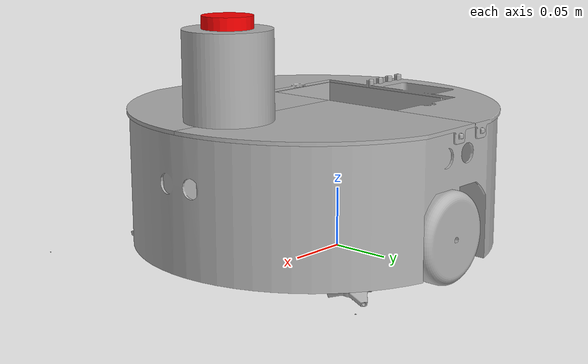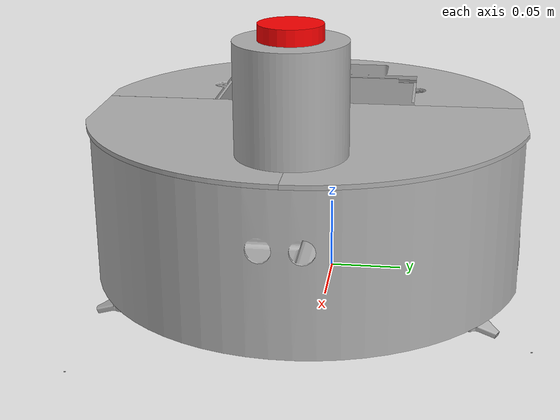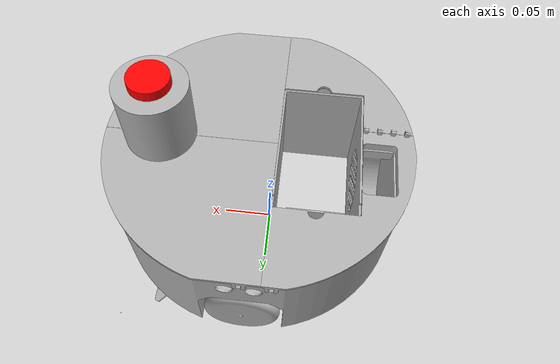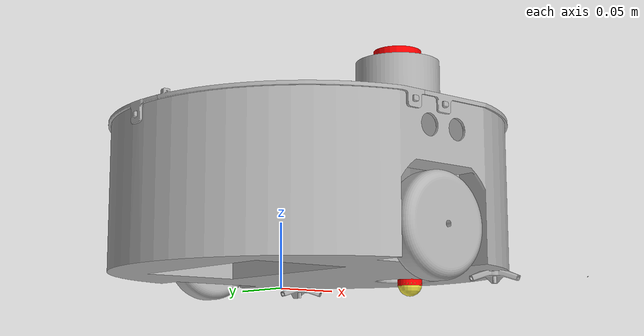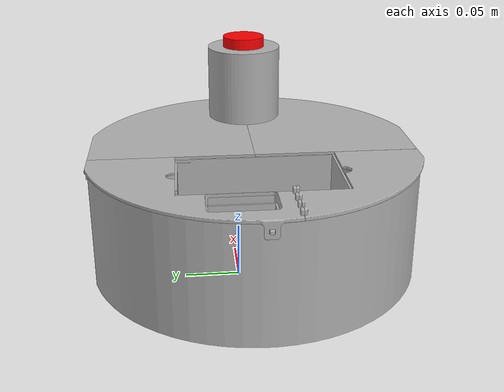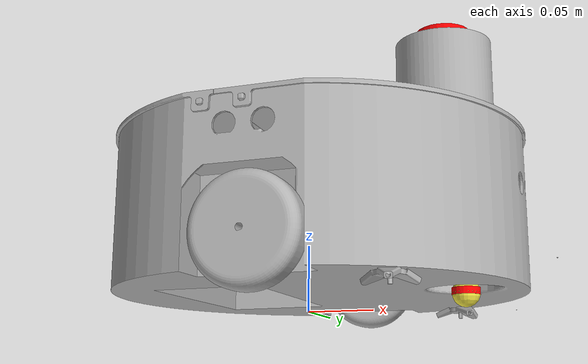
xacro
<?xml version="1.0" ?>
<robot name="ppp90" xmlns:xacro="http://www.ros.org/wiki/xacro">

<xacro:include filename="$(find ppp90_description)/urdf/materials.xacro" />
<xacro:include filename="$(find ppp90_description)/urdf/ppp90.trans" />
<xacro:include filename="$(find ppp90_description)/urdf/ppp90.gazebo" />

<link name="base_footprint"/>

<joint name="base_joint" type="fixed">
    <parent link="base_footprint"/>
    <child link="base_link"/>
    <origin xyz="0.0 0.0 0.010" rpy="0 0 0"/>
</joint>

<link name="base_link">
  <inertial>
    <origin rpy="0 0 0" xyz="0 0 0"/>
    <mass value="5.029311101542255"/>
    <inertia ixx="0.037081" ixy="0.000111" ixz="0.001835" iyy="0.04462" iyz="-2e-05" izz="0.070617"/>
  </inertial>
  <visual>
    <origin rpy="0 0 0" xyz="0 0 0"/>
    <geometry>
      <mesh filename="package://ppp90_description/meshes/base_link.stl" scale="0.001 0.001 0.001"/>
    </geometry>
    <material name="silver"/>
  </visual>
  <collision>
    <origin rpy="0 0 0" xyz="0 0 0"/>
    <geometry>
      <mesh filename="package://ppp90_description/meshes/base_link.stl" scale="0.001 0.001 0.001"/>
    </geometry>
  </collision>
</link>

<link name="roll_celinder">
    <inertial>
      <origin  xyz="0 0 0" rpy="0 0 0"/>
      <mass value="0.1"/>
      <inertia ixx="0.000285" ixy="-0.0" ixz="-0.0" iyy="0.000502" iyz="-0.0" izz="0.000285"/>
    </inertial>
    <visual>
        <origin rpy="0 0 0" xyz="0 0 0"/>
        <geometry>
            <cylinder length="0.005" radius="0.01"/>
        </geometry>
        <material name="red"/>
    </visual>
      <collision>
    <origin xyz="0 0 0" rpy="0 0 0" />
    <geometry>
       <cylinder length="0.005" radius="0.01"/>
    </geometry>
  </collision>
</link>

<joint name="celinder_celinder" type="continuous">
  <origin  xyz="0.12116 -0.014724 -0.001" rpy="0 0 0"/>
  <parent link="base_link"/>
  <child link="roll_celinder"/>
  <axis xyz="-0 -0.0 -1.0"/>
</joint>

<link name="ball">
  <inertial>
    <origin  xyz="0 0 0" rpy="0 0 0"/>
    <mass value="4"/>
    <inertia ixx="0.000285" ixy="-0.0" ixz="-0.0" iyy="0.000502" iyz="-0.0" izz="0.000285"/>
  </inertial>
  <visual >
    <origin xyz="0 0 0" rpy="0 0 0" />
    <geometry>
      <sphere radius="0.01"/>
    </geometry>
    <surface>
      <friction>
        <ode>
          <mu>0</mu>
          <mu2>0</mu2>
          <slip1>1.0</slip1>
          <slip2>1.0</slip2>
        </ode>
      </friction>
    </surface>
  </visual>

  <collision>
    <origin xyz="0 0 0" rpy="0 0 0" />
    <geometry>
      <sphere radius="0.01"/>
    </geometry>
  </collision>
</link>

<joint name="b_ball" type="continuous">
  <origin  xyz="0.0 -0.0 -0.001" rpy="0 0 0"/>
  <parent link="roll_celinder"/>
  <child link="ball"/>
  <axis xyz="0.0 -1.0 -0.0"/>
</joint>

  <gazebo reference="ball">
    <mu1>0.0</mu1>
    <mu2>0.0</mu2>
  </gazebo>
  <gazebo reference="roll_celinder">
    <mu1>0.0</mu1>
    <mu2>0.0</mu2>
  </gazebo>

<link name="wheel_1">
  <inertial>
    <origin rpy="0 0 0" xyz="6.395377760427118e-05 0.012000086928228931 -0.0002917507270338848"/>
    <mass value="0.7647072407364309"/>
    <inertia ixx="0.000285" ixy="-0.0" ixz="-0.0" iyy="0.000502" iyz="-0.0" izz="0.000285"/>
  </inertial>
  <visual>
    <origin rpy="0 0 0" xyz="-0.014338 0.158753 -0.024125"/>
    <geometry>
      <mesh filename="package://ppp90_description/meshes/wheel_1.stl" scale="0.001 0.001 0.001"/>
    </geometry>
    <material name="silver"/>
  </visual>
  <collision>
    <origin rpy="0 0 0" xyz="-0.014338 0.158753 -0.024125"/>
    <geometry>
      <mesh filename="package://ppp90_description/meshes/wheel_1.stl" scale="0.001 0.001 0.001"/>
    </geometry>
  </collision>
</link>

<link name="wheel_Mirror__1">
  <inertial>
    <origin rpy="0 0 0" xyz="-0.00015092559014278847 0.01200013936071219 0.0002680720190440314"/>
    <mass value="0.7647072407364308"/>
    <inertia ixx="0.000285" ixy="-0.0" ixz="-0.0" iyy="0.000502" iyz="-0.0" izz="0.000285"/>
  </inertial>
  <visual>
    <origin rpy="0 0 0" xyz="-0.014335 -0.107356 -0.024125"/>
    <geometry>
      <mesh filename="package://ppp90_description/meshes/wheel_Mirror__1.stl" scale="0.001 0.001 0.001"/>
    </geometry>
    <material name="silver"/>
  </visual>
  <collision>
    <origin rpy="0 0 0" xyz="-0.014335 -0.107356 -0.024125"/>
    <geometry>
      <mesh filename="package://ppp90_description/meshes/wheel_Mirror__1.stl" scale="0.001 0.001 0.001"/>
    </geometry>
  </collision>
</link>

<link name="sonyc_1">
  <inertial>
    <origin rpy="0 0 0" xyz="-0.012999900847315296 0.010235790299775449 5.063181308696818e-05"/>
    <mass value="0.0252883585593009"/>
    <inertia ixx="1e-06" ixy="0.0" ixz="-0.0" iyy="5e-06" iyz="0.0" izz="5e-06"/>
  </inertial>
  <visual>
    <origin rpy="0 0 0" xyz="-0.027338 0.165062 -0.08983"/>
    <geometry>
      <box size="0.001 0.0005 0.00035"/>
    </geometry>
    <material name="silver"/>
  </visual>
</link>

<link name="sonyc_Mirror__1">
  <inertial>
    <origin rpy="0 0 0" xyz="0.013000099152684503 -0.010236050318673445 5.063181308696818e-05"/>
    <mass value="0.025288358559300887"/>
    <inertia ixx="1e-06" ixy="-0.0" ixz="-0.0" iyy="5e-06" iyz="-0.0" izz="5e-06"/>
  </inertial>
  <visual>
    <origin rpy="0 0 0" xyz="-0.001338 -0.136075 -0.08983"/>
    <geometry>
      <box size="0.001 0.0005 0.00035"/>
    </geometry>
    <material name="silver"/>
  </visual>
</link>

<link name="sonyc__1__1">
  <inertial>
    <origin rpy="0 0 0" xyz="-0.010235983367435975 0.012999694386711707 5.06318130869543e-05"/>
    <mass value="0.0252883585593009"/>
    <inertia ixx="5e-06" ixy="-0.0" ixz="-0.0" iyy="1e-06" iyz="-0.0" izz="5e-06"/>
  </inertial>
  <visual>
    <origin rpy="0 0 0" xyz="-0.169259 0.02747 -0.06983"/>
    <geometry>
      <box size="0.001 0.0005 0.00035"/>
    </geometry>
    <material name="silver"/>
  </visual>
</link>

<link name="nema17_1">
  <inertial>
    <origin rpy="0 0 0" xyz="1.1356221513089682e-06 0.0033428571345282126 0.021180135259303026"/>
    <mass value="0.1838412954712099"/>
    <inertia ixx="5.2e-05" ixy="-0.0" ixz="0.0" iyy="5.3e-05" iyz="-0.0" izz="5.2e-05"/>
  </inertial>
  <visual>
    <origin rpy="0 0 0" xyz="-0.014338 0.112903 -0.003"/>
    <geometry>
      <mesh filename="package://ppp90_description/meshes/nema17_1.stl" scale="0.001 0.001 0.001"/>
    </geometry>
    <material name="silver"/>
  </visual>
  <collision>
    <origin rpy="0 0 0" xyz="-0.014338 0.112903 -0.003"/>
    <geometry>
      <mesh filename="package://ppp90_description/meshes/nema17_1.stl" scale="0.001 0.001 0.001"/>
    </geometry>
  </collision>
</link>

<link name="nema17_Mirror__1">
  <inertial>
    <origin rpy="0 0 0" xyz="6.439713466371497e-06 -0.003342366804660879 0.021180135259303026"/>
    <mass value="0.1838412954712099"/>
    <inertia ixx="5.2e-05" ixy="-0.0" ixz="0.0" iyy="5.3e-05" iyz="0.0" izz="5.2e-05"/>
  </inertial>
  <visual>
    <origin rpy="0 0 0" xyz="-0.014372 -0.084506 -0.003"/>
    <geometry>
      <mesh filename="package://ppp90_description/meshes/nema17_Mirror__1.stl" scale="0.001 0.001 0.001"/>
    </geometry>
    <material name="silver"/>
  </visual>
  <collision>
    <origin rpy="0 0 0" xyz="-0.014372 -0.084506 -0.003"/>
    <geometry>
      <mesh filename="package://ppp90_description/meshes/nema17_Mirror__1.stl" scale="0.001 0.001 0.001"/>
    </geometry>
  </collision>
</link>

<link name="12GAN20__1__1">
  <inertial>
    <origin rpy="0 0 0" xyz="-5.679885005938079e-07 2.662622002880255e-06 0.011857871337072685"/>
    <mass value="0.023492103087793172"/>
    <inertia ixx="1e-06" ixy="-0.0" ixz="0.0" iyy="2e-06" iyz="0.0" izz="0.0"/>
  </inertial>
  <visual>
    <origin rpy="0 0 0" xyz="-0.096298 -0.098909 -0.001"/>
    <geometry>
      <mesh filename="package://ppp90_description/meshes/12GAN20__1__1.stl" scale="0.001 0.001 0.001"/>
    </geometry>
    <material name="silver"/>
  </visual>
  <collision>
    <origin rpy="0 0 0" xyz="-0.096298 -0.098909 -0.001"/>
    <geometry>
      <mesh filename="package://ppp90_description/meshes/12GAN20__1__1.stl" scale="0.001 0.001 0.001"/>
    </geometry>
  </collision>
</link>

<link name="brush_1">
  <inertial>
    <origin rpy="0 0 0" xyz="1.2765746805476486e-07 1.4332153454310603e-07 -0.0022204199308318365"/>
    <mass value="0.014937067448072668"/>
    <inertia ixx="1e-06" ixy="0.0" ixz="-0.0" iyy="1e-06" iyz="-0.0" izz="2e-06"/>
  </inertial>
  <visual>
    <origin rpy="0 0 0" xyz="-0.0963 -0.098919 0.001"/>
    <geometry>
      <mesh filename="package://ppp90_description/meshes/brush_1.stl" scale="0.001 0.001 0.001"/>
    </geometry>
    <material name="silver"/>
  </visual>
  <collision>
    <origin rpy="0 0 0" xyz="-0.0963 -0.098919 0.001"/>
    <geometry>
      <mesh filename="package://ppp90_description/meshes/brush_1.stl" scale="0.001 0.001 0.001"/>
    </geometry>
  </collision>
</link>

<link name="brush_Mirror__1">
  <inertial>
    <origin rpy="0 0 0" xyz="-1.1351642089096892e-06 -6.856742623684298e-08 -0.0022204199308317827"/>
    <mass value="0.014937067448072664"/>
    <inertia ixx="1e-06" ixy="0.0" ixz="0.0" iyy="1e-06" iyz="-0.0" izz="2e-06"/>
  </inertial>
  <visual>
    <origin rpy="0 0 0" xyz="-0.096296 0.127886 0.001"/>
    <geometry>
      <mesh filename="package://ppp90_description/meshes/brush_Mirror__1.stl" scale="0.001 0.001 0.001"/>
    </geometry>
    <material name="silver"/>
  </visual>
  <collision>
    <origin rpy="0 0 0" xyz="-0.096296 0.127886 0.001"/>
    <geometry>
      <mesh filename="package://ppp90_description/meshes/brush_Mirror__1.stl" scale="0.001 0.001 0.001"/>
    </geometry>
  </collision>
</link>

<link name="12GAN20__1__Mirror__1">
  <inertial>
    <origin rpy="0 0 0" xyz="-2.596503974161557e-06 6.725409899849266e-06 0.011857871337072688"/>
    <mass value="0.02349210308779317"/>
    <inertia ixx="1e-06" ixy="0.0" ixz="0.0" iyy="2e-06" iyz="-0.0" izz="0.0"/>
  </inertial>
  <visual>
    <origin rpy="0 0 0" xyz="-0.096296 0.127886 -0.001"/>
    <geometry>
      <mesh filename="package://ppp90_description/meshes/12GAN20__1__Mirror__1.stl" scale="0.001 0.001 0.001"/>
    </geometry>
    <material name="silver"/>
  </visual>
  <collision>
    <origin rpy="0 0 0" xyz="-0.096296 0.127886 -0.001"/>
    <geometry>
      <mesh filename="package://ppp90_description/meshes/12GAN20__1__Mirror__1.stl" scale="0.001 0.001 0.001"/>
    </geometry>
  </collision>
</link>

<link name="forward_top_1_1">
  <inertial>
    <origin rpy="0 0 0" xyz="-0.09472371095209488 -0.06502162145818441 0.0004895173930853369"/>
    <mass value="0.48710215659029577"/>
    <inertia ixx="0.000784" ixy="-0.000235" ixz="-1e-06" iyy="0.00099" iyz="-1e-06" izz="0.001773"/>
  </inertial>
  <visual>
    <origin rpy="0 0 0" xyz="-0.163338 0.014494 -0.11"/>
    <geometry>
      <mesh filename="package://ppp90_description/meshes/forward_top_1_1.stl" scale="0.001 0.001 0.001"/>
    </geometry>
    <material name="silver"/>
  </visual>
  <collision>
    <origin rpy="0 0 0" xyz="-0.163338 0.014494 -0.11"/>
    <geometry>
      <mesh filename="package://ppp90_description/meshes/forward_top_1_1.stl" scale="0.001 0.001 0.001"/>
    </geometry>
  </collision>
</link>

<link name="forward_top_1_Mirror__1">
  <inertial>
    <origin rpy="0 0 0" xyz="0.0735909092846742 -0.07845842785085694 0.0004895171912021601"/>
    <mass value="0.48710223650351714"/>
    <inertia ixx="0.000784" ixy="0.000234" ixz="-1e-06" iyy="0.00099" iyz="1e-06" izz="0.001773"/>
  </inertial>
  <visual>
    <origin rpy="0 0 0" xyz="0.005021 -0.129037 -0.11"/>
    <geometry>
      <mesh filename="package://ppp90_description/meshes/forward_top_1_Mirror__1.stl" scale="0.001 0.001 0.001"/>
    </geometry>
    <material name="silver"/>
  </visual>
  <collision>
    <origin rpy="0 0 0" xyz="0.005021 -0.129037 -0.11"/>
    <geometry>
      <mesh filename="package://ppp90_description/meshes/forward_top_1_Mirror__1.stl" scale="0.001 0.001 0.001"/>
    </geometry>
  </collision>
</link>

<link name="back_top_1">
  <inertial>
    <origin rpy="0 0 0" xyz="-0.06983924477939416 -0.07365384534784823 -0.0010887199497685157"/>
    <mass value="0.23560428740017997"/>
    <inertia ixx="0.000537" ixy="-0.000345" ixz="-1.3e-05" iyy="0.00038" iyz="-1.8e-05" izz="0.000907"/>
  </inertial>
  <visual>
    <origin rpy="0 0 0" xyz="0.005021 -0.129037 -0.11"/>
    <geometry>
      <mesh filename="package://ppp90_description/meshes/back_top_1.stl" scale="0.001 0.001 0.001"/>
    </geometry>
    <material name="silver"/>
  </visual>
  <collision>
    <origin rpy="0 0 0" xyz="0.005021 -0.129037 -0.11"/>
    <geometry>
      <mesh filename="package://ppp90_description/meshes/back_top_1.stl" scale="0.001 0.001 0.001"/>
    </geometry>
  </collision>
</link>

<link name="back_top2_1">
  <inertial>
    <origin rpy="0 0 0" xyz="-0.05870936689603044 0.05499707718659973 0.0004968868769272966"/>
    <mass value="0.18961170684744505"/>
    <inertia ixx="0.000183" ixy="0.000153" ixz="1e-06" iyy="0.000249" iyz="-1e-06" izz="0.000432"/>
  </inertial>
  <visual>
    <origin rpy="0 0 0" xyz="0.005021 0.158024 -0.11"/>
    <geometry>
      <mesh filename="package://ppp90_description/meshes/back_top2_1.stl" scale="0.001 0.001 0.001"/>
    </geometry>
    <material name="silver"/>
  </visual>
  <collision>
    <origin rpy="0 0 0" xyz="0.005021 0.158024 -0.11"/>
    <geometry>
      <mesh filename="package://ppp90_description/meshes/back_top2_1.stl" scale="0.001 0.001 0.001"/>
    </geometry>
  </collision>
</link>

<link name="Lidar_Box">
  <inertial>
    <origin rpy="0 0 0" xyz="3.0855486037040247e-07 2.620424081334338e-07 0.03500000000000002"/>
    <mass value="2.114723824855799"/>
    <inertia ixx="0.001511" ixy="-0.0" ixz="-0.0" iyy="0.001511" iyz="0.0" izz="0.001295"/>
  </inertial>
  <visual>
    <origin rpy="0 0 0" xyz="-0.110658 0.014415 -0.112"/>
    <geometry>
      <mesh filename="package://ppp90_description/meshes/Lidar_1.stl" scale="0.001 0.001 0.001"/>
    </geometry>
    <material name="silver"/>
  </visual>
  <collision>
    <origin rpy="0 0 0" xyz="-0.110658 0.014415 -0.112"/>
    <geometry>
      <mesh filename="package://ppp90_description/meshes/Lidar_1.stl" scale="0.001 0.001 0.001"/>
    </geometry>
  </collision>
</link>

<link name="Lidar_1">
  <inertial>
    <origin rpy="0 0 0" xyz="0 0 0"/>
    <mass value="0.001"/>
    <inertia ixx="0.001511" ixy="-0.0" ixz="-0.0" iyy="0.001511" iyz="0.0" izz="0.001295"/>
  </inertial>
  <visual>
    <origin rpy="0 0 0" xyz="0 0 0"/>
    <geometry>
      <cylinder length="0.02" radius="0.02"/>
    </geometry>
    <material name="red"/>
  </visual>
  <collision>
    <origin rpy="0 0 0" xyz="0 0 0"/>
    <geometry>
      <cylinder length="0.02" radius="0.02"/>
    </geometry>
  </collision>
</link>

<joint name="Lidar_box_to_base_link" type="fixed">
  <origin rpy="0 0 0" xyz="0.115679 -0.143452 0.002"/>
  <parent link="forward_top_1_Mirror__1"/>
  <child link="Lidar_Box"/>
</joint>

<joint name="Lidar_Box_LIDAR" type="fixed">
  <origin rpy="0 0 3.14159" xyz="0.0 0 0.07"/>
  <parent link="Lidar_Box"/>
  <child link="Lidar_1"/>
  <axis xyz="0.0 -1.0 -0.0"/>
</joint>

<link name="base_imu_link">
  <inertial>
    <origin rpy="0 0 0" xyz="-0.158919 0.014494 -0.033"/>
    <mass value="0.011774999999999999"/>
    <inertia ixx="1e-06" ixy="0.0" ixz="0.0" iyy="0.0" iyz="-0.0" izz="0.0"/>
  </inertial>
  <visual>
    <origin rpy="0 0 0" xyz="-0.158919 0.014494 -0.033"/>
    <geometry>
      <mesh filename="package://ppp90_description/meshes/IMU_1.stl" scale="0.001 0.001 0.001"/>
    </geometry>
    <material name="silver"/>
  </visual>
  <collision>
    <origin rpy="0 0 0" xyz="-0.158919 0.014494 -0.033"/>
    <geometry>
      <mesh filename="package://ppp90_description/meshes/IMU_1.stl" scale="0.001 0.001 0.001"/>
    </geometry>
  </collision>
</link>

<joint name="Rev1" type="continuous">
  <origin rpy="3.14159 0 0" xyz="0.0 -0.025 0.021125"/>
  <parent link="nema17_1"/>
  <child link="wheel_1"/>
  <axis xyz="0.0 -1.0 -0.0"/>
</joint>

<joint name="Rev4" type="continuous">
  <origin rpy="0 0 0" xyz="-3.7e-05 0.02285 0.021125"/>
  <parent link="nema17_Mirror__1"/>
  <child link="wheel_Mirror__1"/>
  <axis xyz="-0.001615 0.999999 0.0"/>
</joint>

<joint name="Rigid5" type="fixed">
  <origin rpy="0 0 -1.5708" xyz="0.027338 -0.165062 0.08983"/>
  <parent link="base_link"/>
  <child link="sonyc_1"/>
</joint>

<joint name="Rigid6" type="fixed">
  <origin rpy="0 0 1.5708" xyz="0.001338 0.136075 0.08983"/>
  <parent link="base_link"/>
  <child link="sonyc_Mirror__1"/>
</joint>

<joint name="Rigid7" type="fixed">
  <origin rpy="0 0 0" xyz="0.169259 -0.02747 0.06983"/>
  <parent link="base_link"/>
  <child link="sonyc__1__1"/>
</joint>

<joint name="Rigid8" type="fixed">
  <origin rpy="0 0 0" xyz="0.014338 -0.112903 0.003"/>
  <parent link="base_link"/>
  <child link="nema17_1"/>
</joint>

<joint name="Rigid9" type="fixed">
  <origin rpy="0 0 0" xyz="0.014372 0.084506 0.003"/>
  <parent link="base_link"/>
  <child link="nema17_Mirror__1"/>
</joint>

<joint name="Rigid13" type="fixed">
  <origin rpy="0 0 0" xyz="0.096298 0.098909 0.001"/>
  <parent link="base_link"/>
  <child link="12GAN20__1__1"/>
</joint>

<joint name="Rev14" type="continuous">
  <origin rpy="0 0 0" xyz="2e-06 1e-05 -0.002"/>
  <parent link="12GAN20__1__1"/>
  <child link="brush_1"/>
  <axis xyz="0.0 -0.0 -1.0"/>
</joint>

<joint name="Rev15" type="continuous">
  <origin rpy="0 0 0" xyz="0.0 0.0 -0.002"/>
  <parent link="12GAN20__1__Mirror__1"/>
  <child link="brush_Mirror__1"/>
  <axis xyz="-0.0 0.0 -1.0"/>
</joint>

<joint name="Rigid16" type="fixed">
  <origin rpy="0 0 0" xyz="0.096296 -0.127886 0.001"/>
  <parent link="base_link"/>
  <child link="12GAN20__1__Mirror__1"/>
</joint>

<joint name="Rigid21" type="fixed">
  <origin rpy="0 0 0" xyz="0.163338 -0.014494 0.11"/>
  <parent link="base_link"/>
  <child link="forward_top_1_1"/>
</joint>

<joint name="Rigid22" type="fixed">
  <origin rpy="0 0 0" xyz="-0.005021 0.129037 0.11"/>
  <parent link="base_link"/>
  <child link="forward_top_1_Mirror__1"/>
</joint>

<joint name="Rigid23" type="fixed">
  <origin rpy="0 0 0" xyz="-0.005021 0.129037 0.11"/>
  <parent link="base_link"/>
  <child link="back_top_1"/>
</joint>

<joint name="Rigid24" type="fixed">
  <origin rpy="0 0 0" xyz="-0.005021 -0.158024 0.11"/>
  <parent link="base_link"/>
  <child link="back_top2_1"/>
</joint>

<joint name="Rigid26" type="fixed">
  <origin rpy="0 0 0" xyz="0.158919 -0.014494 0.033"/>
  <parent link="base_link"/>
  <child link="base_imu_link"/>
</joint>

</robot>

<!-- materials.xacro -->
<robot name="ppp90" xmlns:xacro="http://www.ros.org/wiki/xacro" >

<material name="silver">
  <color rgba="0.700 0.700 0.700 1.000"/>
</material>

<material name="red">
  <color rgba="1 0 0 1"/>
</material>

<material name="yellow">
  <color rgba="1 1 0.5 1.0"/>
</material>

<material name="green">
  <color rgba="10 1 0 1"/>
</material>

<material name="d_blue">
  <color rgba="0 0 0.75 1"/>
</material>

</robot>

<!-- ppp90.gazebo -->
<robot name="ppp90" xmlns:xacro="http://www.ros.org/wiki/xacro" >

  <xacro:property name="body_color" value="Gazebo/Silver" />

  <gazebo reference="base_link">
    <material>${body_color}</material>
    <mu1>0.2</mu1>
    <mu2>0.2</mu2>
    <selfCollide>true</selfCollide>
    <gravity>true</gravity>
  </gazebo>

  <gazebo reference="wheel_1">
    <material>Gazebo/Blue</material>
    <mu1>0.2</mu1>
    <mu2>0.2</mu2>
    <selfCollide>true</selfCollide>
  </gazebo>

  <gazebo reference="wheel_Mirror__1">
    <material>Gazebo/Blue</material>
    <mu1>0.2</mu1>
    <mu2>0.2</mu2>
    <selfCollide>true</selfCollide>
  </gazebo>

  <gazebo reference="sonyc_1">
    <material>${body_color}</material>
    <mu1>0.2</mu1>
    <mu2>0.2</mu2>
    <selfCollide>true</selfCollide>
  </gazebo>

  <gazebo reference="sonyc_Mirror__1">
    <material>${body_color}</material>
    <mu1>0.2</mu1>
    <mu2>0.2</mu2>
    <selfCollide>true</selfCollide>
  </gazebo>

  <gazebo reference="sonyc__1__1">
    <material>${body_color}</material>
    <mu1>0.2</mu1>
    <mu2>0.2</mu2>
    <selfCollide>true</selfCollide>
  </gazebo>

  <gazebo reference="nema17_1">
    <material>${body_color}</material>
    <mu1>0.2</mu1>
    <mu2>0.2</mu2>
    <selfCollide>true</selfCollide>
  </gazebo>

  <gazebo reference="nema17_Mirror__1">
    <material>${body_color}</material>
    <mu1>0.2</mu1>
    <mu2>0.2</mu2>
    <selfCollide>true</selfCollide>
  </gazebo>

  <gazebo reference="12GAN20__1__1">
    <material>${body_color}</material>
    <mu1>0.2</mu1>
    <mu2>0.2</mu2>
    <selfCollide>true</selfCollide>
  </gazebo>

  <gazebo reference="brush_1">
    <material>${body_color}</material>
    <mu1>0.2</mu1>
    <mu2>0.2</mu2>
    <selfCollide>true</selfCollide>
  </gazebo>

  <gazebo reference="brush_Mirror__1">
    <material>${body_color}</material>
    <mu1>0.2</mu1>
    <mu2>0.2</mu2>
    <selfCollide>true</selfCollide>
  </gazebo>

  <gazebo reference="12GAN20__1__Mirror__1">
    <material>${body_color}</material>
    <mu1>0.2</mu1>
    <mu2>0.2</mu2>
    <selfCollide>true</selfCollide>
  </gazebo>

  <gazebo reference="Forward_wheel_1">
    <material>${body_color}</material>
    <mu1>0.2</mu1>
    <mu2>0.2</mu2>
    <selfCollide>true</selfCollide>
  </gazebo>

  <gazebo reference="forward_top_1_1">
    <material>${body_color}</material>
    <mu1>0.2</mu1>
    <mu2>0.2</mu2>
    <selfCollide>true</selfCollide>
  </gazebo>

  <gazebo reference="forward_top_1_Mirror__1">
    <material>${body_color}</material>
    <mu1>0.2</mu1>
    <mu2>0.2</mu2>
    <selfCollide>true</selfCollide>
  </gazebo>

  <gazebo reference="back_top_1">
    <material>${body_color}</material>
    <mu1>0.2</mu1>
    <mu2>0.2</mu2>
    <selfCollide>true</selfCollide>
  </gazebo>

  <gazebo reference="back_top2_1">
    <material>${body_color}</material>
    <mu1>0.2</mu1>
    <mu2>0.2</mu2>
    <selfCollide>true</selfCollide>
  </gazebo>

  <gazebo reference="Lidar_1">
    <material>Red</material>
    <mu1>0.2</mu1>
    <mu2>0.2</mu2>
    <selfCollide>true</selfCollide>
  </gazebo>

  <gazebo reference="base_imu_link">
    <material>${body_color}</material>
    <mu1>0.2</mu1>
    <mu2>0.2</mu2>
    <selfCollide>true</selfCollide>
  </gazebo>

  <gazebo reference="sonyc_1">
    <material>${body_color}</material>
    <mu1>0.2</mu1>
    <mu2>0.2</mu2>
    <selfCollide>true</selfCollide>
        <sensor type="ray" name="TeraRanger1">
        <pose>0 0 0 0 0 0</pose>
        <visualize>true</visualize>
        <update_rate>50</update_rate>
        <ray>
          <scan>
              <horizontal>
                <samples>10</samples>
                <resolution>1</resolution>
                <min_angle>-0.14835</min_angle>
                <max_angle>0.14835</max_angle>
              </horizontal>
              <vertical>
                <samples>10</samples>
                <resolution>1</resolution>
                <min_angle>-0.14835</min_angle>
                <max_angle>0.14835</max_angle>
              </vertical>
          </scan>
          <range>
              <min>0.01</min>
              <max>2</max>
              <resolution>0.02</resolution>
          </range>
        </ray>
        <plugin filename="libgazebo_ros_range.so" name="gazebo_ros_range">
          <gaussianNoise>0.005</gaussianNoise>
          <alwaysOn>true</alwaysOn>
          <updateRate>50</updateRate>
          <topicName>/ppp/range_sensor1</topicName>
          <frameName>sonyc_1</frameName>
          <radiation>INFRARED</radiation>
          <fov>0.2967</fov>
        </plugin>
    </sensor>
  </gazebo>

  <gazebo reference="sonyc_Mirror__1">
    <material>${body_color}</material>
    <mu1>0.2</mu1>
    <mu2>0.2</mu2>
    <selfCollide>true</selfCollide>
    <selfCollide>true</selfCollide>
      <sensor type="ray" name="TeraRanger1">
        <pose>0 0 0 0 0 0</pose>
        <visualize>true</visualize>
        <update_rate>50</update_rate>
        <ray>
          <scan>
              <horizontal>
                <samples>10</samples>
                <resolution>1</resolution>
                <min_angle>-0.14835</min_angle>
                <max_angle>0.14835</max_angle>
              </horizontal>
              <vertical>
                <samples>10</samples>
                <resolution>1</resolution>
                <min_angle>-0.14835</min_angle>
                <max_angle>0.14835</max_angle>
              </vertical>
          </scan>
          <range>
              <min>0.01</min>
              <max>2</max>
              <resolution>0.02</resolution>
          </range>
        </ray>
        <plugin filename="libgazebo_ros_range.so" name="gazebo_ros_range">
          <gaussianNoise>0.005</gaussianNoise>
          <alwaysOn>true</alwaysOn>
          <updateRate>50</updateRate>
          <topicName>/ppp/range_sensor2</topicName>
          <frameName>sonyc_Mirror__1</frameName>
          <radiation>INFRARED</radiation>
          <fov>0.2967</fov>
        </plugin>
    </sensor>
  </gazebo>

  <gazebo reference="sonyc__1__1">
    <material>${body_color}</material>
    <mu1>0.2</mu1>
    <mu2>0.2</mu2>
    <selfCollide>true</selfCollide>
    <selfCollide>true</selfCollide>
      <sensor type="ray" name="TeraRanger1">
        <pose>0 0 0 0 0 0</pose>
        <visualize>true</visualize>
        <update_rate>50</update_rate>
        <ray>
          <scan>
              <horizontal>
                <samples>10</samples>
                <resolution>1</resolution>
                <min_angle>-0.14835</min_angle>
                <max_angle>0.14835</max_angle>
              </horizontal>
              <vertical>
                <samples>10</samples>
                <resolution>1</resolution>
                <min_angle>-0.14835</min_angle>
                <max_angle>0.14835</max_angle>
              </vertical>
          </scan>
          <range>
              <min>0.01</min>
              <max>2</max>
              <resolution>0.02</resolution>
          </range>
        </ray>
        <plugin filename="libgazebo_ros_range.so" name="gazebo_ros_range">
          <gaussianNoise>0.005</gaussianNoise>
          <alwaysOn>true</alwaysOn>
          <updateRate>50</updateRate>
          <topicName>/ppp/range_sensor3</topicName>
          <frameName>sonyc__1__1</frameName>
          <radiation>INFRARED</radiation>
          <fov>0.2967</fov>
        </plugin>
    </sensor>
  </gazebo>

  <gazebo reference="Lidar_1">
    <sensor type="gpu_ray" name="head_rplidar_sensor">
      <pose>0.2 0 0.2 0 0 0</pose>
      <visualize>true</visualize>
      <update_rate>40</update_rate>
      <ray>
        <scan>
          <horizontal>
            <samples>180</samples>
            <resolution>1</resolution>
            <min_angle>-3.14159</min_angle>
            <max_angle>3.14159</max_angle>
          </horizontal>
        </scan>
        <range>
          <min>0.2</min>
          <max>30.0</max>
          <resolution>0.01</resolution>
        </range>
        <noise>
          <type>gaussian</type>
          <mean>0.0</mean>
          <stddev>0.01</stddev>
        </noise>
      </ray>
      <plugin name="gazebo_ros_head_rplidar_controller" filename="libgazebo_ros_gpu_laser.so">
        <topicName>/scan</topicName>
        <frameName>Lidar_1</frameName>
      </plugin>
    </sensor>
  </gazebo>

  <gazebo>
    <plugin name="differential_drive_controller" filename="libgazebo_ros_diff_drive.so">
      <legacyMode>false</legacyMode>
      <alwaysOn>true</alwaysOn>
      <updateRate>10</updateRate>
      <leftJoint>Rev4</leftJoint>
      <rightJoint>Rev1</rightJoint>
      <wheelSeparation>0.24</wheelSeparation>
      <wheelDiameter>0.074</wheelDiameter>
      <torque>10</torque>
      <commandTopic>cmd_vel</commandTopic>
      <odometryTopic>odom</odometryTopic>
      <odometryFrame>odom</odometryFrame>
      <robotBaseFrame>base_link</robotBaseFrame>
    </plugin>
  </gazebo>

</robot>
